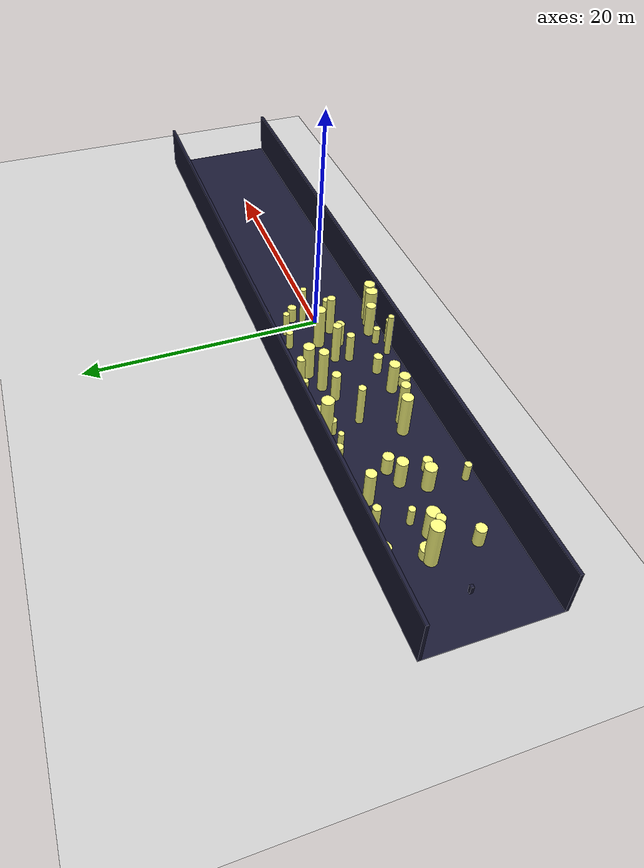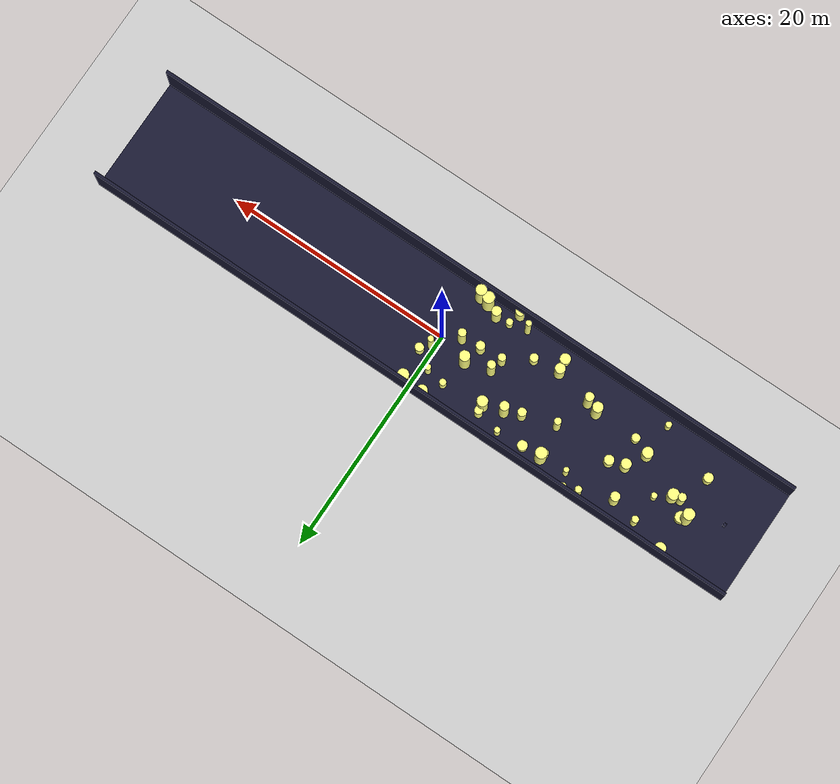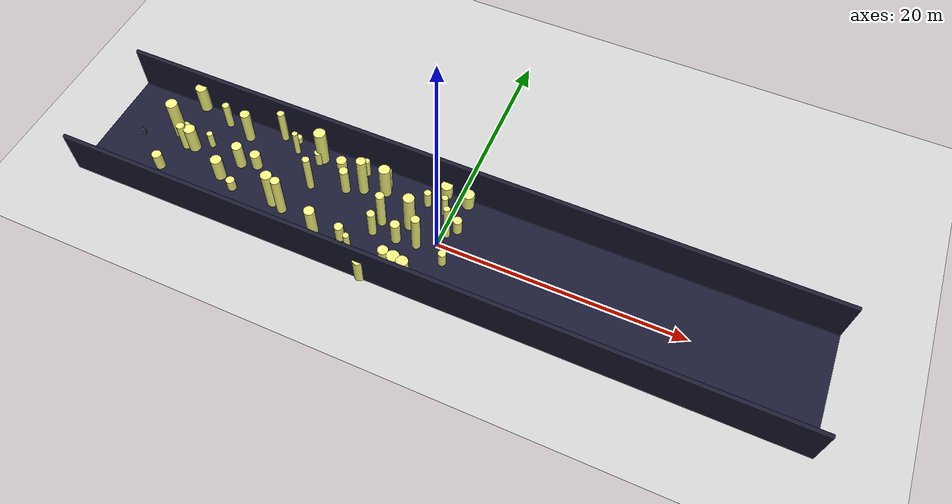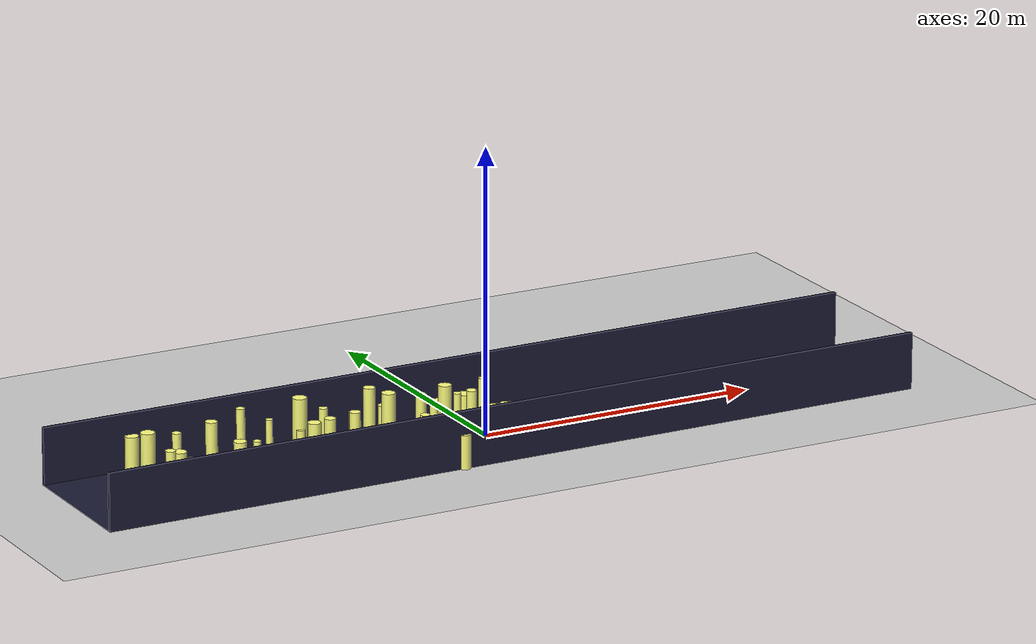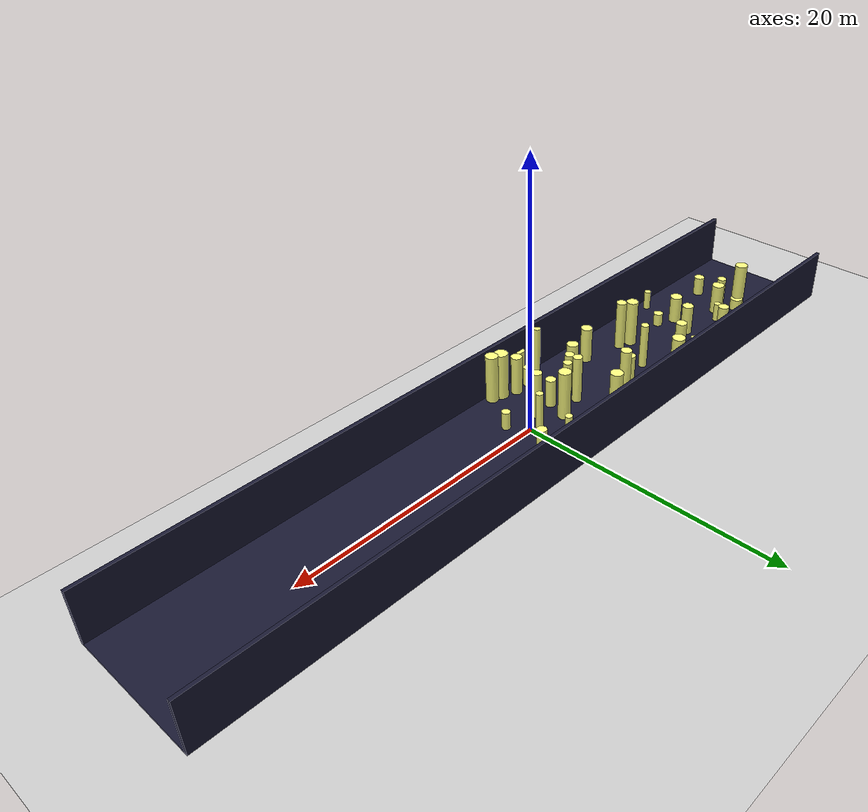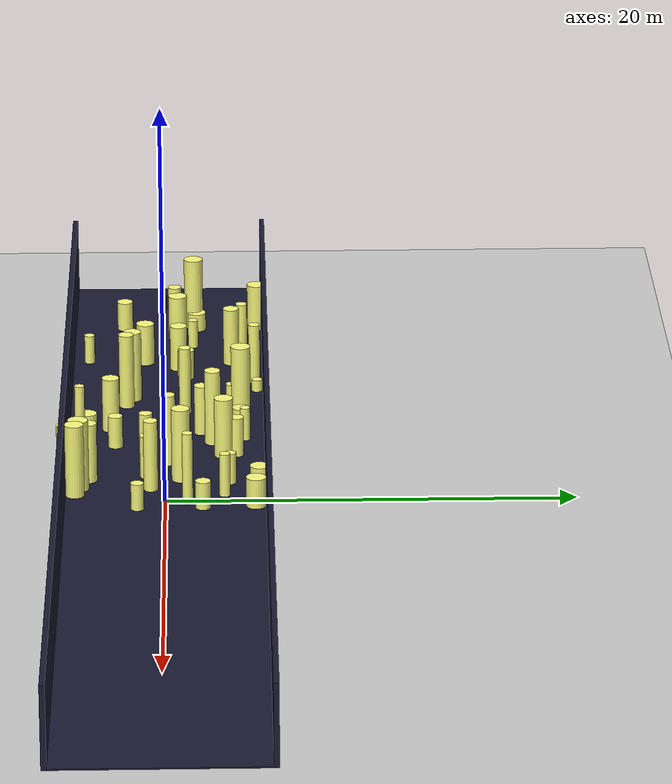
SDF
<sdf version="1.4">
 <world name="default">
  <include><uri>model://ground_plane</uri></include>
  <include><uri>model://sun</uri></include>
  <model name="forest">
   <static>true</static>
   <link name="cylinder0">
    <pose>-7.147886534539268 -2.53039150123728 0.845977990508326 0 0 0</pose>
    <visual name="visual">
     <geometry>
      <cylinder><radius>0.36100098902438316</radius><length>1.691955981016652</length></cylinder>
     </geometry>
     <material>
      <ambient>0.6 0.6 0.6 1</ambient>
      <diffuse>1 1 0.5 1</diffuse>
      <specular>0 0 0</specular>
      <emissive>0 0 0 1</emissive>
     </material>
    </visual>
    <collision name="collision">
     <geometry>
      <cylinder><radius>0.36100098902438316</radius><length>1.691955981016652</length></cylinder>
     </geometry>
     <max_contacts>0</max_contacts>
    </collision>
   </link>
   <link name="cylinder2">
    <pose>-24.197159666264607 1.3272143405766803 1.9146052500122712 0 0 0</pose>
    <visual name="visual">
     <geometry>
      <cylinder><radius>0.4884541443533371</radius><length>3.8292105000245424</length></cylinder>
     </geometry>
     <material>
      <ambient>0.6 0.6 0.6 1</ambient>
      <diffuse>1 1 0.5 1</diffuse>
      <specular>0 0 0</specular>
      <emissive>0 0 0 1</emissive>
     </material>
    </visual>
    <collision name="collision">
     <geometry>
      <cylinder><radius>0.4884541443533371</radius><length>3.8292105000245424</length></cylinder>
     </geometry>
     <max_contacts>0</max_contacts>
    </collision>
   </link>
   <link name="cylinder5">
    <pose>-11.634523558374493 0.9237280479130439 1.7960632908729977 0 0 0</pose>
    <visual name="visual">
     <geometry>
      <cylinder><radius>0.29968947669378615</radius><length>3.5921265817459953</length></cylinder>
     </geometry>
     <material>
      <ambient>0.6 0.6 0.6 1</ambient>
      <diffuse>1 1 0.5 1</diffuse>
      <specular>0 0 0</specular>
      <emissive>0 0 0 1</emissive>
     </material>
    </visual>
    <collision name="collision">
     <geometry>
      <cylinder><radius>0.29968947669378615</radius><length>3.5921265817459953</length></cylinder>
     </geometry>
     <max_contacts>0</max_contacts>
    </collision>
   </link>
   <link name="cylinder7">
    <pose>-7.947823731998888 3.9267993449656036 0.8813694830557257 0 0 0</pose>
    <visual name="visual">
     <geometry>
      <cylinder><radius>0.2509167633498099</radius><length>1.7627389661114514</length></cylinder>
     </geometry>
     <material>
      <ambient>0.6 0.6 0.6 1</ambient>
      <diffuse>1 1 0.5 1</diffuse>
      <specular>0 0 0</specular>
      <emissive>0 0 0 1</emissive>
     </material>
    </visual>
    <collision name="collision">
     <geometry>
      <cylinder><radius>0.2509167633498099</radius><length>1.7627389661114514</length></cylinder>
     </geometry>
     <max_contacts>0</max_contacts>
    </collision>
   </link>
   <link name="cylinder8">
    <pose>-14.677818050004776 4.583228677735381 0.33715706794976424 0 0 0</pose>
    <visual name="visual">
     <geometry>
      <cylinder><radius>0.2694139086498926</radius><length>0.6743141358995285</length></cylinder>
     </geometry>
     <material>
      <ambient>0.6 0.6 0.6 1</ambient>
      <diffuse>1 1 0.5 1</diffuse>
      <specular>0 0 0</specular>
      <emissive>0 0 0 1</emissive>
     </material>
    </visual>
    <collision name="collision">
     <geometry>
      <cylinder><radius>0.2694139086498926</radius><length>0.6743141358995285</length></cylinder>
     </geometry>
     <max_contacts>0</max_contacts>
    </collision>
   </link>
   <link name="cylinder9">
    <pose>-17.915631698224093 0.5598385905810517 1.2128856563475805 0 0 0</pose>
    <visual name="visual">
     <geometry>
      <cylinder><radius>0.43290104651045036</radius><length>2.425771312695161</length></cylinder>
     </geometry>
     <material>
      <ambient>0.6 0.6 0.6 1</ambient>
      <diffuse>1 1 0.5 1</diffuse>
      <specular>0 0 0</specular>
      <emissive>0 0 0 1</emissive>
     </material>
    </visual>
    <collision name="collision">
     <geometry>
      <cylinder><radius>0.43290104651045036</radius><length>2.425771312695161</length></cylinder>
     </geometry>
     <max_contacts>0</max_contacts>
    </collision>
   </link>
   <link name="cylinder10">
    <pose>-5.416344252856518 -4.228232625096861 1.9914165028328275 0 0 0</pose>
    <visual name="visual">
     <geometry>
      <cylinder><radius>0.2437314491117159</radius><length>3.982833005665655</length></cylinder>
     </geometry>
     <material>
      <ambient>0.6 0.6 0.6 1</ambient>
      <diffuse>1 1 0.5 1</diffuse>
      <specular>0 0 0</specular>
      <emissive>0 0 0 1</emissive>
     </material>
    </visual>
    <collision name="collision">
     <geometry>
      <cylinder><radius>0.2437314491117159</radius><length>3.982833005665655</length></cylinder>
     </geometry>
     <max_contacts>0</max_contacts>
    </collision>
   </link>
   <link name="cylinder13">
    <pose>-11.945485515646459 3.7343543377362014 1.7563379325139488 0 0 0</pose>
    <visual name="visual">
     <geometry>
      <cylinder><radius>0.48947886703015514</radius><length>3.5126758650278975</length></cylinder>
     </geometry>
     <material>
      <ambient>0.6 0.6 0.6 1</ambient>
      <diffuse>1 1 0.5 1</diffuse>
      <specular>0 0 0</specular>
      <emissive>0 0 0 1</emissive>
     </material>
    </visual>
    <collision name="collision">
     <geometry>
      <cylinder><radius>0.48947886703015514</radius><length>3.5126758650278975</length></cylinder>
     </geometry>
     <max_contacts>0</max_contacts>
    </collision>
   </link>
   <link name="cylinder17">
    <pose>-0.6109958181470958 2.893471025168205 1.1248857542525301 0 0 0</pose>
    <visual name="visual">
     <geometry>
      <cylinder><radius>0.26172611279897906</radius><length>2.2497715085050602</length></cylinder>
     </geometry>
     <material>
      <ambient>0.6 0.6 0.6 1</ambient>
      <diffuse>1 1 0.5 1</diffuse>
      <specular>0 0 0</specular>
      <emissive>0 0 0 1</emissive>
     </material>
    </visual>
    <collision name="collision">
     <geometry>
      <cylinder><radius>0.26172611279897906</radius><length>2.2497715085050602</length></cylinder>
     </geometry>
     <max_contacts>0</max_contacts>
    </collision>
   </link>
   <link name="cylinder19">
    <pose>-4.811086742201603 0.12453934173678682 1.8541494410820585 0 0 0</pose>
    <visual name="visual">
     <geometry>
      <cylinder><radius>0.34894162981649934</radius><length>3.708298882164117</length></cylinder>
     </geometry>
     <material>
      <ambient>0.6 0.6 0.6 1</ambient>
      <diffuse>1 1 0.5 1</diffuse>
      <specular>0 0 0</specular>
      <emissive>0 0 0 1</emissive>
     </material>
    </visual>
    <collision name="collision">
     <geometry>
      <cylinder><radius>0.34894162981649934</radius><length>3.708298882164117</length></cylinder>
     </geometry>
     <max_contacts>0</max_contacts>
    </collision>
   </link>
   <link name="cylinder20">
    <pose>-10.241238511680573 3.7366486437823987 0.4324220582112719 0 0 0</pose>
    <visual name="visual">
     <geometry>
      <cylinder><radius>0.43045122246468775</radius><length>0.8648441164225438</length></cylinder>
     </geometry>
     <material>
      <ambient>0.6 0.6 0.6 1</ambient>
      <diffuse>1 1 0.5 1</diffuse>
      <specular>0 0 0</specular>
      <emissive>0 0 0 1</emissive>
     </material>
    </visual>
    <collision name="collision">
     <geometry>
      <cylinder><radius>0.43045122246468775</radius><length>0.8648441164225438</length></cylinder>
     </geometry>
     <max_contacts>0</max_contacts>
    </collision>
   </link>
   <link name="cylinder23">
    <pose>-1.6142446024644812 -4.231911779642243 1.8334374162560612 0 0 0</pose>
    <visual name="visual">
     <geometry>
      <cylinder><radius>0.49649550393206016</radius><length>3.6668748325121223</length></cylinder>
     </geometry>
     <material>
      <ambient>0.6 0.6 0.6 1</ambient>
      <diffuse>1 1 0.5 1</diffuse>
      <specular>0 0 0</specular>
      <emissive>0 0 0 1</emissive>
     </material>
    </visual>
    <collision name="collision">
     <geometry>
      <cylinder><radius>0.49649550393206016</radius><length>3.6668748325121223</length></cylinder>
     </geometry>
     <max_contacts>0</max_contacts>
    </collision>
   </link>
   <link name="cylinder24">
    <pose>-16.60672865435462 0.9425299335206745 0.7955071776099385 0 0 0</pose>
    <visual name="visual">
     <geometry>
      <cylinder><radius>0.42145514431712705</radius><length>1.591014355219877</length></cylinder>
     </geometry>
     <material>
      <ambient>0.6 0.6 0.6 1</ambient>
      <diffuse>1 1 0.5 1</diffuse>
      <specular>0 0 0</specular>
      <emissive>0 0 0 1</emissive>
     </material>
    </visual>
    <collision name="collision">
     <geometry>
      <cylinder><radius>0.42145514431712705</radius><length>1.591014355219877</length></cylinder>
     </geometry>
     <max_contacts>0</max_contacts>
    </collision>
   </link>
   <link name="cylinder26">
    <pose>-23.797057718114523 4.625745168727798 1.2628731413633818 0 0 0</pose>
    <visual name="visual">
     <geometry>
      <cylinder><radius>0.4680871777554617</radius><length>2.5257462827267636</length></cylinder>
     </geometry>
     <material>
      <ambient>0.6 0.6 0.6 1</ambient>
      <diffuse>1 1 0.5 1</diffuse>
      <specular>0 0 0</specular>
      <emissive>0 0 0 1</emissive>
     </material>
    </visual>
    <collision name="collision">
     <geometry>
      <cylinder><radius>0.4680871777554617</radius><length>2.5257462827267636</length></cylinder>
     </geometry>
     <max_contacts>0</max_contacts>
    </collision>
   </link>
   <link name="cylinder31">
    <pose>-23.780388621568203 1.4876228525524295 0.4973699896182534 0 0 0</pose>
    <visual name="visual">
     <geometry>
      <cylinder><radius>0.4775433015344443</radius><length>0.9947399792365068</length></cylinder>
     </geometry>
     <material>
      <ambient>0.6 0.6 0.6 1</ambient>
      <diffuse>1 1 0.5 1</diffuse>
      <specular>0 0 0</specular>
      <emissive>0 0 0 1</emissive>
     </material>
    </visual>
    <collision name="collision">
     <geometry>
      <cylinder><radius>0.4775433015344443</radius><length>0.9947399792365068</length></cylinder>
     </geometry>
     <max_contacts>0</max_contacts>
    </collision>
   </link>
   <link name="cylinder32">
    <pose>-1.455620772731276 -0.7115622017840115 1.835701524792615 0 0 0</pose>
    <visual name="visual">
     <geometry><cylinder><radius>0.3483356824140912</radius><length>3.67140304958523</length></cylinder></geometry>
     <material>
      <ambient>0.6 0.6 0.6 1</ambient>
      <diffuse>1 1 0.5 1</diffuse>
      <specular>0 0 0</specular>
      <emissive>0 0 0 1</emissive>
     </material>
    </visual>
    <collision name="collision">
     <geometry><cylinder><radius>0.3483356824140912</radius><length>3.67140304958523</length></cylinder></geometry>
     <max_contacts>0</max_contacts>
    </collision>
   </link>
   <link name="cylinder37">
    <pose>-2.227156157283801 3.162929607211302 0.8202759994643201 0 0 0</pose>
    <visual name="visual">
     <geometry>
      <cylinder><radius>0.2883059270450284</radius><length>1.6405519989286401</length></cylinder>
     </geometry>
     <material>
      <ambient>0.6 0.6 0.6 1</ambient>
      <diffuse>1 1 0.5 1</diffuse>
      <specular>0 0 0</specular>
      <emissive>0 0 0 1</emissive>
     </material>
    </visual>
    <collision name="collision">
     <geometry>
      <cylinder><radius>0.2883059270450284</radius><length>1.6405519989286401</length></cylinder>
     </geometry>
     <max_contacts>0</max_contacts>
    </collision>
   </link>
   <link name="cylinder38">
    <pose>-12.093552864069684 3.2888989436351252 0.713672998915895 0 0 0</pose>
    <visual name="visual">
     <geometry>
      <cylinder><radius>0.29613382893907125</radius><length>1.42734599783179</length></cylinder>
     </geometry>
     <material>
      <ambient>0.6 0.6 0.6 1</ambient>
      <diffuse>1 1 0.5 1</diffuse>
      <specular>0 0 0</specular>
      <emissive>0 0 0 1</emissive>
     </material>
    </visual>
    <collision name="collision">
     <geometry>
      <cylinder><radius>0.29613382893907125</radius><length>1.42734599783179</length></cylinder>
     </geometry>
     <max_contacts>0</max_contacts>
    </collision>
   </link>
   <link name="cylinder41">
    <pose>1.0098472469576834 -1.3427515907958245 0.7044551769499073 0 0 0</pose>
    <visual name="visual">
     <geometry>
      <cylinder><radius>0.3154672098886814</radius><length>1.4089103538998147</length></cylinder>
     </geometry>
     <material>
      <ambient>0.6 0.6 0.6 1</ambient>
      <diffuse>1 1 0.5 1</diffuse>
      <specular>0 0 0</specular>
      <emissive>0 0 0 1</emissive>
     </material>
    </visual>
    <collision name="collision">
     <geometry>
      <cylinder><radius>0.3154672098886814</radius><length>1.4089103538998147</length></cylinder>
     </geometry>
     <max_contacts>0</max_contacts>
    </collision>
   </link>
   <link name="cylinder43">
    <pose>0.7390791805014949 4.401114287455494 0.776004258543322 0 0 0</pose>
    <visual name="visual">
     <geometry><cylinder><radius>0.487037994986735</radius><length>1.552008517086644</length></cylinder></geometry>
     <material>
      <ambient>0.6 0.6 0.6 1</ambient>
      <diffuse>1 1 0.5 1</diffuse>
      <specular>0 0 0</specular>
      <emissive>0 0 0 1</emissive>
     </material>
    </visual>
    <collision name="collision">
     <geometry><cylinder><radius>0.487037994986735</radius><length>1.552008517086644</length></cylinder></geometry>
     <max_contacts>0</max_contacts>
    </collision>
   </link>
   <link name="cylinder44">
    <pose>-21.121284451458855 1.3014376965214307 0.7716638905629418 0 0 0</pose>
    <visual name="visual">
     <geometry>
      <cylinder><radius>0.2565426327069845</radius><length>1.5433277811258836</length></cylinder>
     </geometry>
     <material>
      <ambient>0.6 0.6 0.6 1</ambient>
      <diffuse>1 1 0.5 1</diffuse>
      <specular>0 0 0</specular>
      <emissive>0 0 0 1</emissive>
     </material>
    </visual>
    <collision name="collision">
     <geometry>
      <cylinder><radius>0.2565426327069845</radius><length>1.5433277811258836</length></cylinder>
     </geometry>
     <max_contacts>0</max_contacts>
    </collision>
   </link>
   <link name="cylinder48">
    <pose>-9.212835363459954 -3.946797553412603 0.5192304552640402 0 0 0</pose>
    <visual name="visual">
     <geometry>
      <cylinder><radius>0.45319021435223766</radius><length>1.0384609105280804</length></cylinder>
     </geometry>
     <material>
      <ambient>0.6 0.6 0.6 1</ambient>
      <diffuse>1 1 0.5 1</diffuse>
      <specular>0 0 0</specular>
      <emissive>0 0 0 1</emissive>
     </material>
    </visual>
    <collision name="collision">
     <geometry>
      <cylinder><radius>0.45319021435223766</radius><length>1.0384609105280804</length></cylinder>
     </geometry>
     <max_contacts>0</max_contacts>
    </collision>
   </link>
   <link name="cylinder49">
    <pose>-1.203166292023262 4.591323689585245 0.6818427673470334 0 0 0</pose>
    <visual name="visual">
     <geometry>
      <cylinder><radius>0.4665640111960839</radius><length>1.3636855346940668</length></cylinder>
     </geometry>
     <material>
      <ambient>0.6 0.6 0.6 1</ambient>
      <diffuse>1 1 0.5 1</diffuse>
      <specular>0 0 0</specular>
      <emissive>0 0 0 1</emissive>
     </material>
    </visual>
    <collision name="collision">
     <geometry>
      <cylinder><radius>0.4665640111960839</radius><length>1.3636855346940668</length></cylinder>
     </geometry>
     <max_contacts>0</max_contacts>
    </collision>
   </link>
   <link name="cylinder51">
    <pose>-9.415853639306548 -2.7923139661245977 1.419915691154692 0 0 0</pose>
    <visual name="visual">
     <geometry>
      <cylinder><radius>0.4297711594989393</radius><length>2.839831382309384</length></cylinder>
     </geometry>
     <material>
      <ambient>0.6 0.6 0.6 1</ambient>
      <diffuse>1 1 0.5 1</diffuse>
      <specular>0 0 0</specular>
      <emissive>0 0 0 1</emissive>
     </material>
    </visual>
    <collision name="collision">
     <geometry>
      <cylinder><radius>0.4297711594989393</radius><length>2.839831382309384</length></cylinder>
     </geometry>
     <max_contacts>0</max_contacts>
    </collision>
   </link>
   <link name="cylinder55">
    <pose>-23.89654228058503 -2.2864291057136157 0.7915750081761862 0 0 0</pose>
    <visual name="visual">
     <geometry>
      <cylinder><radius>0.40266826958794544</radius><length>1.5831500163523724</length></cylinder>
     </geometry>
     <material>
      <ambient>0.6 0.6 0.6 1</ambient>
      <diffuse>1 1 0.5 1</diffuse>
      <specular>0 0 0</specular>
      <emissive>0 0 0 1</emissive>
     </material>
    </visual>
    <collision name="collision">
     <geometry>
      <cylinder><radius>0.40266826958794544</radius><length>1.5831500163523724</length></cylinder>
     </geometry>
     <max_contacts>0</max_contacts>
    </collision>
   </link>
   <link name="cylinder56">
    <pose>-2.6915168860239866 -3.7595114620198276 1.5358558752328402 0 0 0</pose>
    <visual name="visual">
     <geometry>
      <cylinder><radius>0.4101143226617895</radius><length>3.0717117504656803</length></cylinder>
     </geometry>
     <material>
      <ambient>0.6 0.6 0.6 1</ambient>
      <diffuse>1 1 0.5 1</diffuse>
      <specular>0 0 0</specular>
      <emissive>0 0 0 1</emissive>
     </material>
    </visual>
    <collision name="collision">
     <geometry>
      <cylinder><radius>0.4101143226617895</radius><length>3.0717117504656803</length></cylinder>
     </geometry>
     <max_contacts>0</max_contacts>
    </collision>
   </link>
   <link name="cylinder57">
    <pose>-22.327788307976064 0.49718473346356973 1.230835638447007 0 0 0</pose>
    <visual name="visual">
     <geometry>
      <cylinder><radius>0.47874811197229566</radius><length>2.461671276894014</length></cylinder>
     </geometry>
     <material>
      <ambient>0.6 0.6 0.6 1</ambient>
      <diffuse>1 1 0.5 1</diffuse>
      <specular>0 0 0</specular>
      <emissive>0 0 0 1</emissive>
     </material>
    </visual>
    <collision name="collision">
     <geometry>
      <cylinder><radius>0.47874811197229566</radius><length>2.461671276894014</length></cylinder>
     </geometry>
     <max_contacts>0</max_contacts>
    </collision>
   </link>
   <link name="cylinder58">
    <pose>-3.1176816136729855 -0.8837401931310964 1.1131635898548498 0 0 0</pose>
    <visual name="visual">
     <geometry>
      <cylinder><radius>0.38105272283199965</radius><length>2.2263271797096995</length></cylinder>
     </geometry>
     <material>
      <ambient>0.6 0.6 0.6 1</ambient>
      <diffuse>1 1 0.5 1</diffuse>
      <specular>0 0 0</specular>
      <emissive>0 0 0 1</emissive>
     </material>
    </visual>
    <collision name="collision">
     <geometry>
      <cylinder><radius>0.38105272283199965</radius><length>2.2263271797096995</length></cylinder>
     </geometry>
     <max_contacts>0</max_contacts>
    </collision>
   </link>
   <link name="cylinder59">
    <pose>-8.84829752086118 1.7615249106251234 1.3064324709113642 0 0 0</pose>
    <visual name="visual">
     <geometry>
      <cylinder><radius>0.36413401016565283</radius><length>2.6128649418227283</length></cylinder>
     </geometry>
     <material>
      <ambient>0.6 0.6 0.6 1</ambient>
      <diffuse>1 1 0.5 1</diffuse>
      <specular>0 0 0</specular>
      <emissive>0 0 0 1</emissive>
     </material>
    </visual>
    <collision name="collision">
     <geometry>
      <cylinder><radius>0.36413401016565283</radius><length>2.6128649418227283</length></cylinder>
     </geometry>
     <max_contacts>0</max_contacts>
    </collision>
   </link>
   <link name="cylinder60">
    <pose>-4.218280016733239 -4.955279667334835 1.180016431451273 0 0 0</pose>
    <visual name="visual">
     <geometry>
      <cylinder><radius>0.4194617668120034</radius><length>2.360032862902546</length></cylinder>
     </geometry>
     <material>
      <ambient>0.6 0.6 0.6 1</ambient>
      <diffuse>1 1 0.5 1</diffuse>
      <specular>0 0 0</specular>
      <emissive>0 0 0 1</emissive>
     </material>
    </visual>
    <collision name="collision">
     <geometry>
      <cylinder><radius>0.4194617668120034</radius><length>2.360032862902546</length></cylinder>
     </geometry>
     <max_contacts>0</max_contacts>
    </collision>
   </link>
   <link name="cylinder62">
    <pose>-13.630063807239429 -1.743835739934434 1.8595089209385427 0 0 0</pose>
    <visual name="visual">
     <geometry>
      <cylinder><radius>0.4434614311057857</radius><length>3.7190178418770854</length></cylinder>
     </geometry>
     <material>
      <ambient>0.6 0.6 0.6 1</ambient>
      <diffuse>1 1 0.5 1</diffuse>
      <specular>0 0 0</specular>
      <emissive>0 0 0 1</emissive>
     </material>
    </visual>
    <collision name="collision">
     <geometry>
      <cylinder><radius>0.4434614311057857</radius><length>3.7190178418770854</length></cylinder>
     </geometry>
     <max_contacts>0</max_contacts>
    </collision>
   </link>
   <link name="cylinder63">
    <pose>-3.9061294817569774 -3.8638016128840933 0.7703875035873373 0 0 0</pose>
    <visual name="visual">
     <geometry>
      <cylinder><radius>0.2877964791546844</radius><length>1.5407750071746746</length></cylinder>
     </geometry>
     <material>
      <ambient>0.6 0.6 0.6 1</ambient>
      <diffuse>1 1 0.5 1</diffuse>
      <specular>0 0 0</specular>
      <emissive>0 0 0 1</emissive>
     </material>
    </visual>
    <collision name="collision">
     <geometry>
      <cylinder><radius>0.2877964791546844</radius><length>1.5407750071746746</length></cylinder>
     </geometry>
     <max_contacts>0</max_contacts>
    </collision>
   </link>
   <link name="cylinder64">
    <pose>-5.873427844379268 3.501506842583332 1.0357657400106017 0 0 0</pose>
    <visual name="visual">
     <geometry>
      <cylinder><radius>0.34426962476435535</radius><length>2.0715314800212035</length></cylinder>
     </geometry>
     <material>
      <ambient>0.6 0.6 0.6 1</ambient>
      <diffuse>1 1 0.5 1</diffuse>
      <specular>0 0 0</specular>
      <emissive>0 0 0 1</emissive>
     </material>
    </visual>
    <collision name="collision">
     <geometry>
      <cylinder><radius>0.34426962476435535</radius><length>2.0715314800212035</length></cylinder>
     </geometry>
     <max_contacts>0</max_contacts>
    </collision>
   </link>
   <link name="cylinder66">
    <pose>-17.372472718179786 -1.796371179504325 0.5414505719724099 0 0 0</pose>
    <visual name="visual">
     <geometry>
      <cylinder><radius>0.35898087424876346</radius><length>1.0829011439448197</length></cylinder>
     </geometry>
     <material>
      <ambient>0.6 0.6 0.6 1</ambient>
      <diffuse>1 1 0.5 1</diffuse>
      <specular>0 0 0</specular>
      <emissive>0 0 0 1</emissive>
     </material>
    </visual>
    <collision name="collision">
     <geometry>
      <cylinder><radius>0.35898087424876346</radius><length>1.0829011439448197</length></cylinder>
     </geometry>
     <max_contacts>0</max_contacts>
    </collision>
   </link>
   <link name="cylinder67">
    <pose>0.31725761116122086 1.090114594858079 1.8538000023960999 0 0 0</pose>
    <visual name="visual">
     <geometry>
      <cylinder><radius>0.25733646649351577</radius><length>3.7076000047921998</length></cylinder>
     </geometry>
     <material>
      <ambient>0.6 0.6 0.6 1</ambient>
      <diffuse>1 1 0.5 1</diffuse>
      <specular>0 0 0</specular>
      <emissive>0 0 0 1</emissive>
     </material>
    </visual>
    <collision name="collision">
     <geometry>
      <cylinder><radius>0.25733646649351577</radius><length>3.7076000047921998</length></cylinder>
     </geometry>
     <max_contacts>0</max_contacts>
    </collision>
   </link>
   <link name="cylinder69">
    <pose>-5.08454268456412 -0.9904673026554356 1.3159226149917562 0 0 0</pose>
    <visual name="visual">
     <geometry>
      <cylinder><radius>0.3299367701350112</radius><length>2.6318452299835124</length></cylinder>
     </geometry>
     <material>
      <ambient>0.6 0.6 0.6 1</ambient>
      <diffuse>1 1 0.5 1</diffuse>
      <specular>0 0 0</specular>
      <emissive>0 0 0 1</emissive>
     </material>
    </visual>
    <collision name="collision">
     <geometry>
      <cylinder><radius>0.3299367701350112</radius><length>2.6318452299835124</length></cylinder>
     </geometry>
     <max_contacts>0</max_contacts>
    </collision>
   </link>
   <link name="cylinder71">
    <pose>-7.507345537423131 2.318097412035959 1.9617592631893568 0 0 0</pose>
    <visual name="visual">
     <geometry>
      <cylinder><radius>0.3974014690077402</radius><length>3.9235185263787136</length></cylinder>
     </geometry>
     <material>
      <ambient>0.6 0.6 0.6 1</ambient>
      <diffuse>1 1 0.5 1</diffuse>
      <specular>0 0 0</specular>
      <emissive>0 0 0 1</emissive>
     </material>
    </visual>
    <collision name="collision">
     <geometry>
      <cylinder><radius>0.3974014690077402</radius><length>3.9235185263787136</length></cylinder>
     </geometry>
     <max_contacts>0</max_contacts>
    </collision>
   </link>
   <link name="cylinder72">
    <pose>-0.8026552924311332 -4.395622533841567 1.878560181789932 0 0 0</pose>
    <visual name="visual">
     <geometry>
      <cylinder><radius>0.4616221494962193</radius><length>3.757120363579864</length></cylinder>
     </geometry>
     <material>
      <ambient>0.6 0.6 0.6 1</ambient>
      <diffuse>1 1 0.5 1</diffuse>
      <specular>0 0 0</specular>
      <emissive>0 0 0 1</emissive>
     </material>
    </visual>
    <collision name="collision">
     <geometry>
      <cylinder><radius>0.4616221494962193</radius><length>3.757120363579864</length></cylinder>
     </geometry>
     <max_contacts>0</max_contacts>
    </collision>
   </link>
   <link name="cylinder74">
    <pose>-2.684169351433436 0.7476055161715598 1.9019695907332597 0 0 0</pose>
    <visual name="visual">
     <geometry>
      <cylinder><radius>0.45131194614618503</radius><length>3.8039391814665193</length></cylinder>
     </geometry>
     <material>
      <ambient>0.6 0.6 0.6 1</ambient>
      <diffuse>1 1 0.5 1</diffuse>
      <specular>0 0 0</specular>
      <emissive>0 0 0 1</emissive>
     </material>
    </visual>
    <collision name="collision">
     <geometry>
      <cylinder><radius>0.45131194614618503</radius><length>3.8039391814665193</length></cylinder>
     </geometry>
     <max_contacts>0</max_contacts>
    </collision>
   </link>
   <link name="cylinder86">
    <pose>-18.83480613000517 -1.1651102569042857 1.111124167647706 0 0 0</pose>
    <visual name="visual">
     <geometry>
      <cylinder><radius>0.46470209271264534</radius><length>2.222248335295412</length></cylinder>
     </geometry>
     <material>
      <ambient>0.6 0.6 0.6 1</ambient>
      <diffuse>1 1 0.5 1</diffuse>
      <specular>0 0 0</specular>
      <emissive>0 0 0 1</emissive>
     </material>
    </visual>
    <collision name="collision">
     <geometry>
      <cylinder><radius>0.46470209271264534</radius><length>2.222248335295412</length></cylinder>
     </geometry>
     <max_contacts>0</max_contacts>
    </collision>
   </link>
   <link name="cylinder87">
    <pose>-18.65187619202411 3.2864647260114275 1.5386496184016218 0 0 0</pose>
    <visual name="visual">
     <geometry>
      <cylinder><radius>0.40182186912083967</radius><length>3.0772992368032437</length></cylinder>
     </geometry>
     <material>
      <ambient>0.6 0.6 0.6 1</ambient>
      <diffuse>1 1 0.5 1</diffuse>
      <specular>0 0 0</specular>
      <emissive>0 0 0 1</emissive>
     </material>
    </visual>
    <collision name="collision">
     <geometry>
      <cylinder><radius>0.40182186912083967</radius><length>3.0772992368032437</length></cylinder>
     </geometry>
     <max_contacts>0</max_contacts>
    </collision>
   </link>
   <link name="cylinder88">
    <pose>-23.03708479426249 0.3428021957333085 1.3478325215470341 0 0 0</pose>
    <visual name="visual">
     <geometry>
      <cylinder><radius>0.34436355858349993</radius><length>2.6956650430940683</length></cylinder>
     </geometry>
     <material>
      <ambient>0.6 0.6 0.6 1</ambient>
      <diffuse>1 1 0.5 1</diffuse>
      <specular>0 0 0</specular>
      <emissive>0 0 0 1</emissive>
     </material>
    </visual>
    <collision name="collision">
     <geometry>
      <cylinder><radius>0.34436355858349993</radius><length>2.6956650430940683</length></cylinder>
     </geometry>
     <max_contacts>0</max_contacts>
    </collision>
   </link>
   <link name="cylinder89">
    <pose>-5.7938915660243175 2.8572449667020674 1.5584877785140585 0 0 0</pose>
    <visual name="visual">
     <geometry>
      <cylinder><radius>0.46301319725392814</radius><length>3.116975557028117</length></cylinder>
     </geometry>
     <material>
      <ambient>0.6 0.6 0.6 1</ambient>
      <diffuse>1 1 0.5 1</diffuse>
      <specular>0 0 0</specular>
      <emissive>0 0 0 1</emissive>
     </material>
    </visual>
    <collision name="collision">
     <geometry>
      <cylinder><radius>0.46301319725392814</radius><length>3.116975557028117</length></cylinder>
     </geometry>
     <max_contacts>0</max_contacts>
    </collision>
   </link>
   <link name="cylinder90">
    <pose>-18.963788091357216 -4.061588472611443 0.7785099607548043 0 0 0</pose>
    <visual name="visual">
     <geometry>
      <cylinder><radius>0.2604406201655374</radius><length>1.5570199215096086</length></cylinder>
     </geometry>
     <material>
      <ambient>0.6 0.6 0.6 1</ambient>
      <diffuse>1 1 0.5 1</diffuse>
      <specular>0 0 0</specular>
      <emissive>0 0 0 1</emissive>
     </material>
    </visual>
    <collision name="collision">
     <geometry>
      <cylinder><radius>0.2604406201655374</radius><length>1.5570199215096086</length></cylinder>
     </geometry>
     <max_contacts>0</max_contacts>
    </collision>
   </link>
   <link name="cylinder91">
    <pose>-15.945826203839935 4.455645779871569 1.596738678680001 0 0 0</pose>
    <visual name="visual">
     <geometry>
      <cylinder><radius>0.29419388852643347</radius><length>3.193477357360002</length></cylinder>
     </geometry>
     <material>
      <ambient>0.6 0.6 0.6 1</ambient>
      <diffuse>1 1 0.5 1</diffuse>
      <specular>0 0 0</specular>
      <emissive>0 0 0 1</emissive>
     </material>
    </visual>
    <collision name="collision">
     <geometry>
      <cylinder><radius>0.29419388852643347</radius><length>3.193477357360002</length></cylinder>
     </geometry>
     <max_contacts>0</max_contacts>
    </collision>
   </link>
   <link name="cylinder92">
    <pose>-12.638891667542824 -2.0409170725322587 1.9707836083214454 0 0 0</pose>
    <visual name="visual">
     <geometry>
      <cylinder><radius>0.3783470158077755</radius><length>3.941567216642891</length></cylinder>
     </geometry>
     <material>
      <ambient>0.6 0.6 0.6 1</ambient>
      <diffuse>1 1 0.5 1</diffuse>
      <specular>0 0 0</specular>
      <emissive>0 0 0 1</emissive>
     </material>
    </visual>
    <collision name="collision">
     <geometry>
      <cylinder><radius>0.3783470158077755</radius><length>3.941567216642891</length></cylinder>
     </geometry>
     <max_contacts>0</max_contacts>
    </collision>
   </link>
   <link name="cylinder93">
    <pose>-20.92169399376422 3.834287346139474 1.2474694867202605 0 0 0</pose>
    <visual name="visual">
     <geometry>
      <cylinder><radius>0.29717415498216154</radius><length>2.494938973440521</length></cylinder>
     </geometry>
     <material>
      <ambient>0.6 0.6 0.6 1</ambient>
      <diffuse>1 1 0.5 1</diffuse>
      <specular>0 0 0</specular>
      <emissive>0 0 0 1</emissive>
     </material>
    </visual>
    <collision name="collision">
     <geometry>
      <cylinder><radius>0.29717415498216154</radius><length>2.494938973440521</length></cylinder>
     </geometry>
     <max_contacts>0</max_contacts>
    </collision>
   </link>
   <link name="cylinder96">
    <pose>0.9147298903134917 1.8338714080311638 0.7284442553641082 0 0 0</pose>
    <visual name="visual">
     <geometry>
      <cylinder><radius>0.37115509376087474</radius><length>1.4568885107282163</length></cylinder>
     </geometry>
     <material>
      <ambient>0.6 0.6 0.6 1</ambient>
      <diffuse>1 1 0.5 1</diffuse>
      <specular>0 0 0</specular>
      <emissive>0 0 0 1</emissive>
     </material>
    </visual>
    <collision name="collision">
     <geometry>
      <cylinder><radius>0.37115509376087474</radius><length>1.4568885107282163</length></cylinder>
     </geometry>
     <max_contacts>0</max_contacts>
    </collision>
   </link>
   <link name="cylinder97">
    <pose>-14.267643147629666 3.5889500364421707 1.212893581825894 0 0 0</pose>
    <visual name="visual">
     <geometry>
      <cylinder><radius>0.22837690330121352</radius><length>2.425787163651788</length></cylinder>
     </geometry>
     <material>
      <ambient>0.6 0.6 0.6 1</ambient>
      <diffuse>1 1 0.5 1</diffuse>
      <specular>0 0 0</specular>
      <emissive>0 0 0 1</emissive>
     </material>
    </visual>
    <collision name="collision">
     <geometry>
      <cylinder><radius>0.22837690330121352</radius><length>2.425787163651788</length></cylinder>
     </geometry>
     <max_contacts>0</max_contacts>
    </collision>
   </link>
   <link name="cube0">
    <pose>0 5.0 2.0 0 0 0</pose>
    <visual name="visual">
     <geometry><box><size>60.0 0.25 4.0</size></box></geometry>
     <material>
      <ambient>0.1 0.1 0.1 1</ambient>
      <diffuse>0.1 0.1 0.2 1</diffuse>
      <specular>0 0 0</specular>
      <emissive>0 0 0 1</emissive>
     </material>
    </visual>
    <collision name="collision">
     <geometry><box><size>60.0 0.25 4.0</size></box></geometry>
     <max_contacts>0</max_contacts>
    </collision>
   </link>
   <link name="cube1">
    <pose>0 -5.0 2.0 0 0 0</pose>
    <visual name="visual">
     <geometry><box><size>60.0 0.25 4.0</size></box></geometry>
     <material>
      <ambient>0.1 0.1 0.1 1</ambient>
      <diffuse>0.1 0.1 0.2 1</diffuse>
      <specular>0 0 0</specular>
      <emissive>0 0 0 1</emissive>
     </material>
    </visual>
    <collision name="collision">
     <geometry><box><size>60.0 0.25 4.0</size></box></geometry>
     <max_contacts>0</max_contacts>
    </collision>
   </link>
   <link name="cube2">
    <pose>0 0 0.03125 0 0 0</pose>
    <visual name="visual">
     <geometry><box><size>60.0 10 0.0625</size></box></geometry>
     <material>
      <ambient>0.1 0.1 0.1 1</ambient>
      <diffuse>0.1 0.1 0.2 1</diffuse>
      <specular>0 0 0</specular>
      <emissive>0 0 0 1</emissive>
     </material>
    </visual>
    <collision name="collision">
     <geometry><box><size>60.0 10 0.0625</size></box></geometry>
     <max_contacts>0</max_contacts>
    </collision>
   </link>
   <link name="cube3">
    <pose>-27.0 0.0 0.25 0 0 0</pose>
    <visual name="visual">
     <geometry><box><size>0.25 0.25 1.0</size></box></geometry>
     <material>
      <ambient>0.1 0.1 0.1 1</ambient>
      <diffuse>0.1 0.1 0.2 1</diffuse>
      <specular>0 0 0</specular>
      <emissive>0 0 0 1</emissive>
     </material>
    </visual>
    <collision name="collision">
     <geometry><box><size>0.25 0.25 1.0</size></box></geometry>
     <max_contacts>0</max_contacts>
    </collision>
   </link>
  </model>
 </world>
</sdf>
